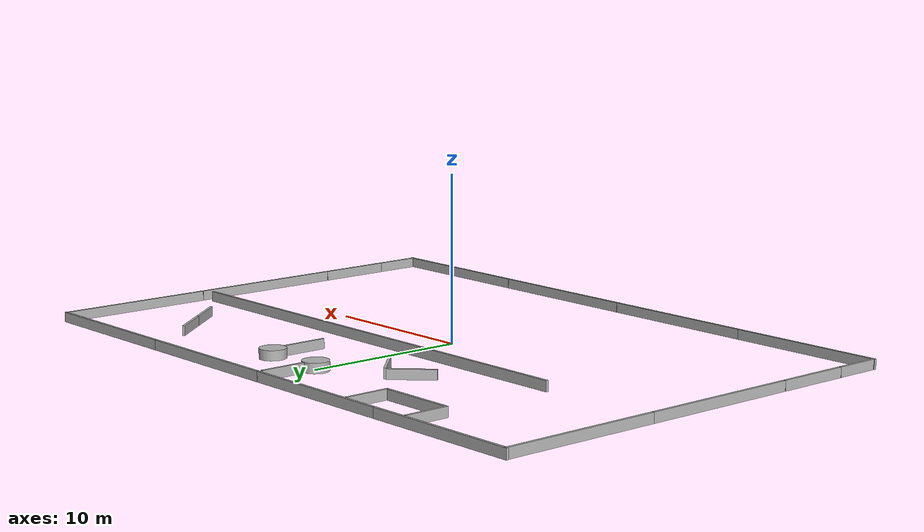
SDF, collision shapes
<?xml version="1.0" ?>
<sdf version="1.5">
 <model name='path_planning_ground'>
      <static>1</static>

      <link name='wall'>
        <pose frame=''>0.5 6.1 0 0 -0 0</pose>
        <collision name='wall_01'>
          <pose frame=''>-0 0 1.25 0 -0 0</pose>
          <geometry>
            <box>
              <size>30 0.15 0.6</size>
            </box>
          </geometry>
          <max_contacts>10</max_contacts>
          <surface>
            <contact>
              <ode/>
            </contact>
            <bounce/>
            <friction>
              <torsional>
                <ode/>
              </torsional>
              <ode/>
            </friction>
          </surface>
        </collision>

        <visual name='visual_wall'>
          <geometry>
            <mesh>
              <uri>model://path_planning_ground/meshes/concrete_barrier_30m.dae</uri>
            </mesh>
          </geometry>
        </visual>

        <self_collide>0</self_collide>
        <enable_wind>0</enable_wind>
        <kinematic>0</kinematic>
      </link>

      <link name='concrete_barrier_m_1'>
      <pose frame=''>14.689 7.315 0 0 -0 2.246</pose>
        <collision name='concrete_barrier_m_01'>
          <pose frame=''>-0 0 0.3 0 -0 0</pose>
          <geometry>
            <box>
              <size>2.8 0.15 0.6</size>
            </box>
          </geometry>
          <max_contacts>10</max_contacts>
          <surface>
            <contact>
              <ode/>
            </contact>
            <bounce/>
            <friction>
              <torsional>
                <ode/>
              </torsional>
              <ode/>
            </friction>
          </surface>
        </collision>
        <visual name='visual'>
          <geometry>
            <mesh>
              <uri>model://path_planning_ground/meshes/concrete_barrier_m.dae</uri>
            </mesh>
          </geometry>
        </visual>
        <self_collide>0</self_collide>
        <enable_wind>0</enable_wind>
        <kinematic>0</kinematic>
      </link>
      <link name='concrete_barrier_m_2'>
      <pose frame=''>12.94 9.5 0 0 -0 2.246</pose>
        <collision name='concrete_barrier_m_01'>
          <pose frame=''>-0 0 0.3 0 -0 0</pose>
          <geometry>
            <box>
              <size>2.8 0.15 0.6</size>
            </box>
          </geometry>
          <max_contacts>10</max_contacts>
          <surface>
            <contact>
              <ode/>
            </contact>
            <bounce/>
            <friction>
              <torsional>
                <ode/>
              </torsional>
              <ode/>
            </friction>
          </surface>
        </collision>
        <visual name='visual'>
          <geometry>
            <mesh>
              <uri>model://path_planning_ground/meshes/concrete_barrier_m.dae</uri>
            </mesh>
          </geometry>
        </visual>
        <self_collide>0</self_collide>
        <enable_wind>0</enable_wind>
        <kinematic>0</kinematic>
      </link>
      <link name='round_concrete_base_1'>
      <pose frame=''>4 9.95 0 0 -0 0</pose>
        <collision name='round_concrete_base_01'>
          <pose frame=''>-0 0 0.3 0 -0 0</pose>
          <geometry>
            <cylinder>
              <radius>0.8</radius>
              <length>0.6</length>
            </cylinder>
          </geometry>
          <max_contacts>10</max_contacts>
          <surface>
            <contact>
              <ode/>
            </contact>
            <bounce/>
            <friction>
              <torsional>
                <ode/>
              </torsional>
              <ode/>
            </friction>
          </surface>
        </collision>
        <visual name='visual'>
          <geometry>
            <mesh>
              <uri>model://path_planning_ground/meshes/round_concrete_base.dae</uri>
            </mesh>
          </geometry>
        </visual>
        <self_collide>0</self_collide>
        <enable_wind>0</enable_wind>
        <kinematic>0</kinematic>
      </link>
      <link name='concrete_barrier_m_3'>
      <pose frame=''>4 7.75 0 0 -0 1.57675</pose>
        <collision name='concrete_barrier_m_01'>
          <pose frame=''>-0 0 0.3 0 -0 0</pose>
          <geometry>
            <box>
              <size>2.8 0.15 0.6</size>
            </box>
          </geometry>
          <max_contacts>10</max_contacts>
          <surface>
            <contact>
              <ode/>
            </contact>
            <bounce/>
            <friction>
              <torsional>
                <ode/>
              </torsional>
              <ode/>
            </friction>
          </surface>
        </collision>
        <visual name='visual'>
          <geometry>
            <mesh>
              <uri>model://path_planning_ground/meshes/concrete_barrier_m.dae</uri>
            </mesh>
          </geometry>
        </visual>
        <self_collide>0</self_collide>
        <enable_wind>0</enable_wind>
        <kinematic>0</kinematic>
      </link>
      <link name='round_concrete_base_2'>
      <pose frame=''>0 9.95 0 0 -0 0</pose>
        <collision name='round_concrete_base_01'>
          <pose frame=''>-0 0 0.3 0 -0 0</pose>
          <geometry>
            <cylinder>
              <radius>0.8</radius>
              <length>0.6</length>
            </cylinder>
          </geometry>
          <max_contacts>10</max_contacts>
          <surface>
            <contact>
              <ode/>
            </contact>
            <bounce/>
            <friction>
              <torsional>
                <ode/>
              </torsional>
              <ode/>
            </friction>
          </surface>
        </collision>
        <visual name='visual'>
          <geometry>
            <mesh>
              <uri>model://path_planning_ground/meshes/round_concrete_base.dae</uri>
            </mesh>
          </geometry>
        </visual>
        <self_collide>0</self_collide>
        <enable_wind>0</enable_wind>
        <kinematic>0</kinematic>
      </link>
      <link name='concrete_barrier_m_4'>
      <pose frame=''>0 12.2 0 0 -0 1.57675</pose>
        <collision name='concrete_barrier_m_01'>
          <pose frame=''>-0 0 0.3 0 -0 0</pose>
          <geometry>
            <box>
              <size>2.8 0.15 0.6</size>
            </box>
          </geometry>
          <max_contacts>10</max_contacts>
          <surface>
            <contact>
              <ode/>
            </contact>
            <bounce/>
            <friction>
              <torsional>
                <ode/>
              </torsional>
              <ode/>
            </friction>
          </surface>
        </collision>
        <visual name='visual'>
          <geometry>
            <mesh>
              <uri>model://path_planning_ground/meshes/concrete_barrier_m.dae</uri>
            </mesh>
          </geometry>
        </visual>
        <self_collide>0</self_collide>
        <enable_wind>0</enable_wind>
        <kinematic>0</kinematic>
      </link>
      <link name='concrete_barrier_m_5'>
      <pose frame=''>-7.54 12.325 0 0 -0 1.57675</pose>
        <collision name='concrete_barrier_m_01'>
          <pose frame=''>-0 0 0.3 0 -0 0</pose>
          <geometry>
            <box>
              <size>2.8 0.15 0.6</size>
            </box>
          </geometry>
          <max_contacts>10</max_contacts>
          <surface>
            <contact>
              <ode/>
            </contact>
            <bounce/>
            <friction>
              <torsional>
                <ode/>
              </torsional>
              <ode/>
            </friction>
          </surface>
        </collision>
        <visual name='visual'>
          <geometry>
            <mesh>
              <uri>model://path_planning_ground/meshes/concrete_barrier_m.dae</uri>
            </mesh>
          </geometry>
        </visual>
        <self_collide>0</self_collide>
        <enable_wind>0</enable_wind>
        <kinematic>0</kinematic>
      </link>
      <link name='concrete_barrier_l_7'>
        <pose frame=''>-9.91 11 0 0 -0 0</pose>
        <collision name='concrete_barrier_l_01'>
          <pose frame=''>-0 0 0.3 0 -0 0</pose>
          <geometry>
            <box>
              <size>4.6 0.15 0.6</size>
            </box>
          </geometry>
          <max_contacts>10</max_contacts>
          <surface>
            <contact>
              <ode/>
            </contact>
            <bounce/>
            <friction>
              <torsional>
                <ode/>
              </torsional>
              <ode/>
            </friction>
          </surface>
        </collision>
        <visual name='visual'>
          <geometry>
            <mesh>
              <uri>model://path_planning_ground/meshes/concrete_barrier_l.dae</uri>
            </mesh>
          </geometry>
        </visual>
        <self_collide>0</self_collide>
        <enable_wind>0</enable_wind>
        <kinematic>0</kinematic>
      </link>
      <link name='concrete_barrier_m_6'>
      <pose frame=''>-12.3 12.325 0 0 -0 1.57675</pose>
        <collision name='concrete_barrier_m_01'>
          <pose frame=''>-0 0 0.3 0 -0 0</pose>
          <geometry>
            <box>
              <size>2.8 0.15 0.6</size>
            </box>
          </geometry>
          <max_contacts>10</max_contacts>
          <surface>
            <contact>
              <ode/>
            </contact>
            <bounce/>
            <friction>
              <torsional>
                <ode/>
              </torsional>
              <ode/>
            </friction>
          </surface>
        </collision>
        <visual name='visual'>
          <geometry>
            <mesh>
              <uri>model://path_planning_ground/meshes/concrete_barrier_m.dae</uri>
            </mesh>
          </geometry>
        </visual>
        <self_collide>0</self_collide>
        <enable_wind>0</enable_wind>
        <kinematic>0</kinematic>
      </link>
      <link name='concrete_barrier_m_7'>
      <pose frame=''>-2.95 7.25 0 0 0 -0.7854</pose>
        <collision name='concrete_barrier_m_01'>
          <pose frame=''>-0 0 0.3 0 -0 0</pose>
          <geometry>
            <box>
              <size>2.8 0.15 0.6</size>
            </box>
          </geometry>
          <max_contacts>10</max_contacts>
          <surface>
            <contact>
              <ode/>
            </contact>
            <bounce/>
            <friction>
              <torsional>
                <ode/>
              </torsional>
              <ode/>
            </friction>
          </surface>
        </collision>
        <visual name='visual'>
          <geometry>
            <mesh>
              <uri>model://path_planning_ground/meshes/concrete_barrier_m.dae</uri>
            </mesh>
          </geometry>
        </visual>
        <self_collide>0</self_collide>
        <enable_wind>0</enable_wind>
        <kinematic>0</kinematic>
      </link>
      <link name='concrete_barrier_m_8'>
      <pose frame=''>-5.05 7.25 0 0 -0 0.7854</pose>
        <collision name='concrete_barrier_m_01'>
          <pose frame=''>-0 0 0.3 0 -0 0</pose>
          <geometry>
            <box>
              <size>2.8 0.15 0.6</size>
            </box>
          </geometry>
          <max_contacts>10</max_contacts>
          <surface>
            <contact>
              <ode/>
            </contact>
            <bounce/>
            <friction>
              <torsional>
                <ode/>
              </torsional>
              <ode/>
            </friction>
          </surface>
        </collision>
        <visual name='visual'>
          <geometry>
            <mesh>
              <uri>model://path_planning_ground/meshes/concrete_barrier_m.dae</uri>
            </mesh>
          </geometry>
        </visual>
        <self_collide>0</self_collide>
        <enable_wind>0</enable_wind>
        <kinematic>0</kinematic>
      </link>

    <!-- side -->
    <link name='concrete_barrier_xl_1'>
       <pose>19.9 8.92 0.0 0 0 1.5708</pose>
        <collision name='concrete_barrier_xl_01'>
          <pose frame=''>-0 0 0.3 0 -0 0</pose>
          <geometry>
            <box>
              <size>10 0.15 0.6</size>
            </box>
          </geometry>
          <max_contacts>10</max_contacts>
          <surface>
            <contact>
              <ode/>
            </contact>
            <bounce/>
            <friction>
              <torsional>
                <ode/>
              </torsional>
              <ode/>
            </friction>
          </surface>
        </collision>
        <visual name='visual'>
          <geometry>
            <mesh>
              <uri>model://path_planning_ground/meshes/concrete_barrier_xl.dae</uri>
            </mesh>
          </geometry>
        </visual>
        <self_collide>0</self_collide>
        <enable_wind>0</enable_wind>
        <kinematic>0</kinematic>
      </link>

     <link name='concrete_barrier_xl_2'>
       <pose>19.9 -1.09 0.0 0 0 1.5708</pose>
        <collision name='concrete_barrier_xl_02'>
          <pose frame=''>-0 0 0.3 0 -0 0</pose>
          <geometry>
            <box>
              <size>10 0.15 0.6</size>
            </box>
          </geometry>
          <max_contacts>10</max_contacts>
          <surface>
            <contact>
              <ode/>
            </contact>
            <bounce/>
            <friction>
              <torsional>
                <ode/>
              </torsional>
              <ode/>
            </friction>
          </surface>
        </collision>
        <visual name='visual'>
          <geometry>
            <mesh>
              <uri>model://path_planning_ground/meshes/concrete_barrier_xl.dae</uri>
            </mesh>
          </geometry>
        </visual>
        <self_collide>0</self_collide>
        <enable_wind>0</enable_wind>
        <kinematic>0</kinematic>
      </link>

    <link name='concrete_barrier_l_10'>
       <pose>19.9 -8.4 0.0 0 0 1.5708</pose>
        <collision name='concrete_barrier_l_10'>
          <pose frame=''>-0 0 0.3 0 -0 0</pose>
          <geometry>
            <box>
              <size>4.6 0.15 0.6</size>
            </box>
          </geometry>
          <max_contacts>10</max_contacts>
          <surface>
            <contact>
              <ode/>
            </contact>
            <bounce/>
            <friction>
              <torsional>
                <ode/>
              </torsional>
              <ode/>
            </friction>
          </surface>
        </collision>
        <visual name='visual'>
          <geometry>
            <mesh>
              <uri>model://path_planning_ground/meshes/concrete_barrier_l.dae</uri>
            </mesh>
          </geometry>
        </visual>
        <self_collide>0</self_collide>
        <enable_wind>0</enable_wind>
        <kinematic>0</kinematic>
      </link>

    <link name='concrete_barrier_m_9'>
      <pose>19.9 -12.12 0.0 0 0 1.5708</pose>se>
        <collision name='concrete_barrier_m_09'>
          <pose frame=''>-0 0 0.3 0 -0 0</pose>
          <geometry>
            <box>
              <size>2.8 0.15 0.6</size>
            </box>
          </geometry>
          <max_contacts>10</max_contacts>
          <surface>
            <contact>
              <ode/>
            </contact>
            <bounce/>
            <friction>
              <torsional>
                <ode/>
              </torsional>
              <ode/>
            </friction>
          </surface>
        </collision>
        <visual name='visual'>
          <geometry>
            <mesh>
              <uri>model://path_planning_ground/meshes/concrete_barrier_m.dae</uri>
            </mesh>
          </geometry>
        </visual>
        <self_collide>0</self_collide>
        <enable_wind>0</enable_wind>
        <kinematic>0</kinematic>
      </link>

    <!-- side -->
    <link name='concrete_barrier_xl_3'>
      <pose>-19.9 8.92 0.0 0 0 1.5708</pose>
        <collision name='concrete_barrier_xl_03'>
          <pose frame=''>-0 0 0.3 0 -0 0</pose>
          <geometry>
            <box>
              <size>10 0.15 0.6</size>
            </box>
          </geometry>
          <max_contacts>10</max_contacts>
          <surface>
            <contact>
              <ode/>
            </contact>
            <bounce/>
            <friction>
              <torsional>
                <ode/>
              </torsional>
              <ode/>
            </friction>
          </surface>
        </collision>
        <visual name='visual'>
          <geometry>
            <mesh>
              <uri>model://path_planning_ground/meshes/concrete_barrier_xl.dae</uri>
            </mesh>
          </geometry>
        </visual>
        <self_collide>0</self_collide>
        <enable_wind>0</enable_wind>
        <kinematic>0</kinematic>
      </link>

     <link name='concrete_barrier_xl_4'>
       <pose>-19.9 -1.09 0.0 0 0 1.5708</pose>
        <collision name='concrete_barrier_xl_04'>
          <pose frame=''>-0 0 0.3 0 -0 0</pose>
          <geometry>
            <box>
              <size>10 0.15 0.6</size>
            </box>
          </geometry>
          <max_contacts>10</max_contacts>
          <surface>
            <contact>
              <ode/>
            </contact>
            <bounce/>
            <friction>
              <torsional>
                <ode/>
              </torsional>
              <ode/>
            </friction>
          </surface>
        </collision>
        <visual name='visual'>
          <geometry>
            <mesh>
              <uri>model://path_planning_ground/meshes/concrete_barrier_xl.dae</uri>
            </mesh>
          </geometry>
        </visual>
        <self_collide>0</self_collide>
        <enable_wind>0</enable_wind>
        <kinematic>0</kinematic>
      </link>

    <link name='concrete_barrier_l_11'>
       <pose>-19.9 -8.4 0.0 0 0 1.5708</pose>
        <collision name='concrete_barrier_l_11'>
          <pose frame=''>-0 0 0.3 0 -0 0</pose>
          <geometry>
            <box>
              <size>4.6 0.15 0.6</size>
            </box>
          </geometry>
          <max_contacts>10</max_contacts>
          <surface>
            <contact>
              <ode/>
            </contact>
            <bounce/>
            <friction>
              <torsional>
                <ode/>
              </torsional>
              <ode/>
            </friction>
          </surface>
        </collision>
        <visual name='visual'>
          <geometry>
            <mesh>
              <uri>model://path_planning_ground/meshes/concrete_barrier_l.dae</uri>
            </mesh>
          </geometry>
        </visual>
        <self_collide>0</self_collide>
        <enable_wind>0</enable_wind>
        <kinematic>0</kinematic>
      </link>

    <link name='concrete_barrier_m_10'>
      <pose>-19.9 -12.12 0.0 0 0 1.5708</pose>se>
        <collision name='concrete_barrier_m_10'>
          <pose frame=''>-0 0 0.3 0 -0 0</pose>
          <geometry>
            <box>
              <size>2.8 0.15 0.6</size>
            </box>
          </geometry>
          <max_contacts>10</max_contacts>
          <surface>
            <contact>
              <ode/>
            </contact>
            <bounce/>
            <friction>
              <torsional>
                <ode/>
              </torsional>
              <ode/>
            </friction>
          </surface>
        </collision>
        <visual name='visual'>
          <geometry>
            <mesh>
              <uri>model://path_planning_ground/meshes/concrete_barrier_m.dae</uri>
            </mesh>
          </geometry>
        </visual>
        <self_collide>0</self_collide>
        <enable_wind>0</enable_wind>
        <kinematic>0</kinematic>
      </link>

    <!-- side -->
     <link name='concrete_barrier_xl_5'>
       <pose>15.02 -13.6 0.0 0 0 0</pose>
        <collision name='concrete_barrier_xl_05'>
          <pose frame=''>-0 0 0.3 0 -0 0</pose>
          <geometry>
            <box>
              <size>10 0.15 0.6</size>
            </box>
          </geometry>
          <max_contacts>10</max_contacts>
          <surface>
            <contact>
              <ode/>
            </contact>
            <bounce/>
            <friction>
              <torsional>
                <ode/>
              </torsional>
              <ode/>
            </friction>
          </surface>
        </collision>
        <visual name='visual'>
          <geometry>
            <mesh>
              <uri>model://path_planning_ground/meshes/concrete_barrier_xl.dae</uri>
            </mesh>
          </geometry>
        </visual>
        <self_collide>0</self_collide>
        <enable_wind>0</enable_wind>
        <kinematic>0</kinematic>
      </link>

     <link name='concrete_barrier_xl_6'>
       <pose>5.01 -13.6 0.0 0 0 0</pose>
        <collision name='concrete_barrier_xl_06'>
          <pose frame=''>-0 0 0.3 0 -0 0</pose>
          <geometry>
            <box>
              <size>10 0.15 0.6</size>
            </box>
          </geometry>
          <max_contacts>10</max_contacts>
          <surface>
            <contact>
              <ode/>
            </contact>
            <bounce/>
            <friction>
              <torsional>
                <ode/>
              </torsional>
              <ode/>
            </friction>
          </surface>
        </collision>
        <visual name='visual'>
          <geometry>
            <mesh>
              <uri>model://path_planning_ground/meshes/concrete_barrier_xl.dae</uri>
            </mesh>
          </geometry>
        </visual>
        <self_collide>0</self_collide>
        <enable_wind>0</enable_wind>
        <kinematic>0</kinematic>
      </link>

    <link name='concrete_barrier_xl_7'>
       <pose>-5.01 -13.6 0.0 0 0 0</pose>
        <collision name='concrete_barrier_xl_07'>
          <pose frame=''>-0 0 0.3 0 -0 0</pose>
          <geometry>
            <box>
              <size>10 0.15 0.6</size>
            </box>
          </geometry>
          <max_contacts>10</max_contacts>
          <surface>
            <contact>
              <ode/>
            </contact>
            <bounce/>
            <friction>
              <torsional>
                <ode/>
              </torsional>
              <ode/>
            </friction>
          </surface>
        </collision>
        <visual name='visual'>
          <geometry>
            <mesh>
              <uri>model://path_planning_ground/meshes/concrete_barrier_xl.dae</uri>
            </mesh>
          </geometry>
        </visual>
        <self_collide>0</self_collide>
        <enable_wind>0</enable_wind>
        <kinematic>0</kinematic>
      </link>

    <link name='concrete_barrier_xl_8'>
       <pose>-15.02 -13.6 0.0 0 0 0</pose>
        <collision name='concrete_barrier_xl_08'>
          <pose frame=''>-0 0 0.3 0 -0 0</pose>
          <geometry>
            <box>
              <size>10 0.15 0.6</size>
            </box>
          </geometry>
          <max_contacts>10</max_contacts>
          <surface>
            <contact>
              <ode/>
            </contact>
            <bounce/>
            <friction>
              <torsional>
                <ode/>
              </torsional>
              <ode/>
            </friction>
          </surface>
        </collision>
        <visual name='visual'>
          <geometry>
            <mesh>
              <uri>model://path_planning_ground/meshes/concrete_barrier_xl.dae</uri>
            </mesh>
          </geometry>
        </visual>
        <self_collide>0</self_collide>
        <enable_wind>0</enable_wind>
        <kinematic>0</kinematic>
      </link>

  <!-- side -->
     <link name='concrete_barrier_xl_09'>
       <pose>15.02 13.85 0.0 0 0 0</pose>
        <collision name='concrete_barrier_xl_09'>
          <pose frame=''>-0 0 0.3 0 -0 0</pose>
          <geometry>
            <box>
              <size>10 0.15 0.6</size>
            </box>
          </geometry>
          <max_contacts>10</max_contacts>
          <surface>
            <contact>
              <ode/>
            </contact>
            <bounce/>
            <friction>
              <torsional>
                <ode/>
              </torsional>
              <ode/>
            </friction>
          </surface>
        </collision>
        <visual name='visual'>
          <geometry>
            <mesh>
              <uri>model://path_planning_ground/meshes/concrete_barrier_xl.dae</uri>
            </mesh>
          </geometry>
        </visual>
        <self_collide>0</self_collide>
        <enable_wind>0</enable_wind>
        <kinematic>0</kinematic>
      </link>

     <link name='concrete_barrier_xl_10'>
       <pose>5.01 13.85 0.0 0 0 0</pose>
        <collision name='concrete_barrier_xl_10'>
          <pose frame=''>-0 0 0.3 0 -0 0</pose>
          <geometry>
            <box>
              <size>10 0.15 0.6</size>
            </box>
          </geometry>
          <max_contacts>10</max_contacts>
          <surface>
            <contact>
              <ode/>
            </contact>
            <bounce/>
            <friction>
              <torsional>
                <ode/>
              </torsional>
              <ode/>
            </friction>
          </surface>
        </collision>
        <visual name='visual'>
          <geometry>
            <mesh>
              <uri>model://path_planning_ground/meshes/concrete_barrier_xl.dae</uri>
            </mesh>
          </geometry>
        </visual>
        <self_collide>0</self_collide>
        <enable_wind>0</enable_wind>
        <kinematic>0</kinematic>
      </link>

    <link name='concrete_barrier_xl_11'>
       <pose>-5.01 13.85 0.0 0 0 0</pose>
        <collision name='concrete_barrier_xl_11'>
          <pose frame=''>-0 0 0.3 0 -0 0</pose>
          <geometry>
            <box>
              <size>10 0.15 0.6</size>
            </box>
          </geometry>
          <max_contacts>10</max_contacts>
          <surface>
            <contact>
              <ode/>
            </contact>
            <bounce/>
            <friction>
              <torsional>
                <ode/>
              </torsional>
              <ode/>
            </friction>
          </surface>
        </collision>
        <visual name='visual'>
          <geometry>
            <mesh>
              <uri>model://path_planning_ground/meshes/concrete_barrier_xl.dae</uri>
            </mesh>
          </geometry>
        </visual>
        <self_collide>0</self_collide>
        <enable_wind>0</enable_wind>
        <kinematic>0</kinematic>
      </link>

    <link name='concrete_barrier_xl_12'>
       <pose>-15.02 13.85 0.0 0 0 0</pose>
        <collision name='concrete_barrier_xl_12'>
          <pose frame=''>-0 0 0.3 0 -0 0</pose>
          <geometry>
            <box>
              <size>10 0.15 0.6</size>
            </box>
          </geometry>
          <max_contacts>10</max_contacts>
          <surface>
            <contact>
              <ode/>
            </contact>
            <bounce/>
            <friction>
              <torsional>
                <ode/>
              </torsional>
              <ode/>
            </friction>
          </surface>
        </collision>
        <visual name='visual'>
          <geometry>
            <mesh>
              <uri>model://path_planning_ground/meshes/concrete_barrier_xl.dae</uri>
            </mesh>
          </geometry>
        </visual>
        <self_collide>0</self_collide>
        <enable_wind>0</enable_wind>
        <kinematic>0</kinematic>
      </link>

      </model>
</sdf>
